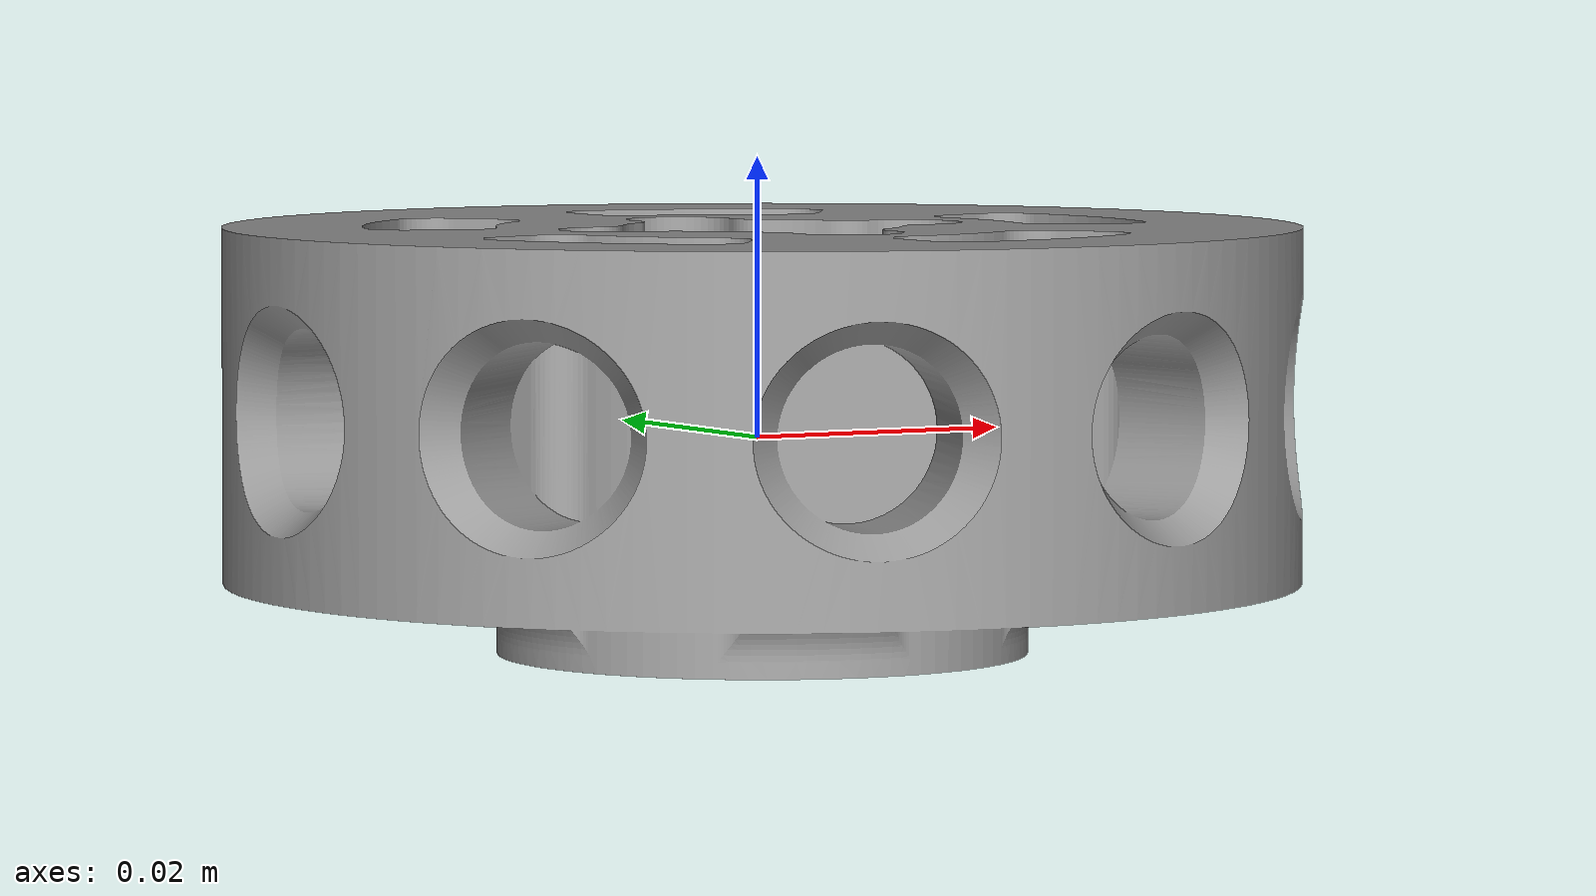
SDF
<?xml version='1.0'?>
<sdf version='1.5'>
  <model name='track_drum'>
    <link name='link_0'>
      <pose frame=''>0 0 0 0 -0 0</pose>
      <gravity>1</gravity>
      <self_collide>1</self_collide>
      <kinematic>0</kinematic>
      <inertial>
        <mass>1</mass>
        <inertia>
          <ixx>1</ixx>
          <ixy>0</ixy>
          <ixz>0</ixz>
          <iyy>1</iyy>
          <iyz>0</iyz>
          <izz>1</izz>
        </inertia>
      </inertial>
      <visual name='visual'>
        <pose frame=''>-0.0375 -0.0375 -0.034 0 -0 0</pose>
        <geometry>
          <mesh>
            <uri>model://track_drum/meshes/drum.STL</uri>
            <scale>0.001 0.001 0.001</scale>
          </mesh>
        </geometry>
        <material>
          <lighting>1</lighting>
          <script>
            <uri>file://media/materials/scripts/gazebo.material</uri>
            <name>Gazebo/Grey</name>
          </script>
          <ambient>0.3 0.3 0.3 1</ambient>
          <diffuse>0.7 0.7 0.7 1</diffuse>
          <specular>0.01 0.01 0.01 1</specular>
          <emissive>0 0 0 1</emissive>
          <shader type='vertex'>
            <normal_map>__default__</normal_map>
          </shader>
        </material>
        <cast_shadows>1</cast_shadows>
        <transparency>0</transparency>
      </visual>
      <collision name='collision'>
        <laser_retro>0</laser_retro>
        <max_contacts>20</max_contacts>
        <pose frame=''>-0.0375 -0.0375 -0.034 0 -0 0</pose>
        <geometry>
          <mesh>
            <uri>model://track_drum/meshes/drum.STL</uri>
            <scale>0.001 0.001 0.001</scale>
          </mesh>
        </geometry>
        <surface>
          <friction>
            <ode>
              <mu>1</mu>
              <mu2>1</mu2>
              <fdir1>0 0 0</fdir1>
              <slip1>0</slip1>
              <slip2>0</slip2>
            </ode>
          </friction>
          <bounce>
            <restitution_coefficient>0</restitution_coefficient>
            <threshold>1</threshold>
          </bounce>
          <contact>
            <collide_without_contact>0</collide_without_contact>
            <collide_without_contact_bitmask>1</collide_without_contact_bitmask>
            <collide_bitmask>1</collide_bitmask>
            <ode>
              <soft_cfm>0.1</soft_cfm>
              <soft_erp>0.2</soft_erp>
              <kp>1e+13</kp>
              <kd>1</kd>
              <max_vel>0.01</max_vel>
              <min_depth>0</min_depth>
            </ode>
            <bullet>
              <split_impulse>1</split_impulse>
              <split_impulse_penetration_threshold>-0.01</split_impulse_penetration_threshold>
              <soft_cfm>0</soft_cfm>
              <soft_erp>0.2</soft_erp>
              <kp>1e+13</kp>
              <kd>1</kd>
            </bullet>
          </contact>
        </surface>
      </collision>
    </link>
    <static>0</static>
    <allow_auto_disable>1</allow_auto_disable>
  </model>
</sdf>
